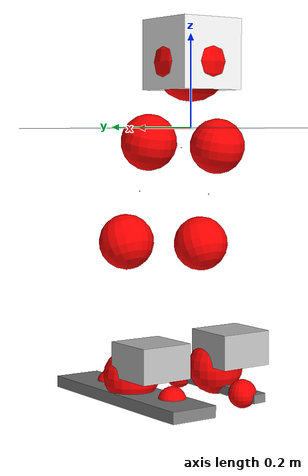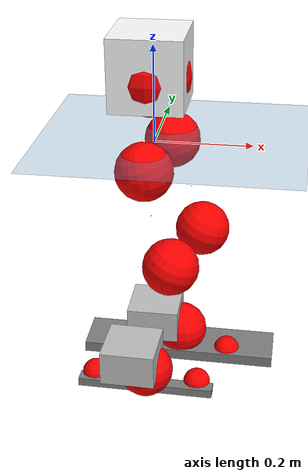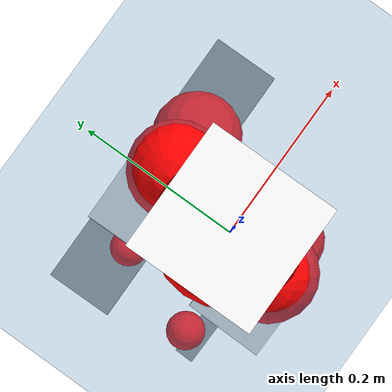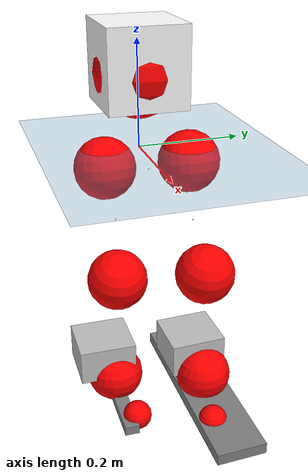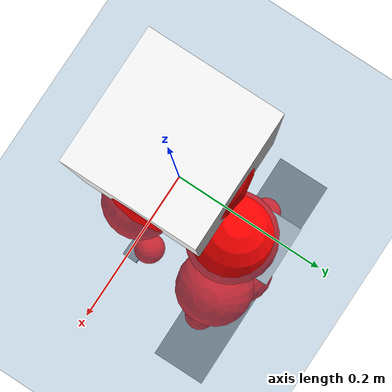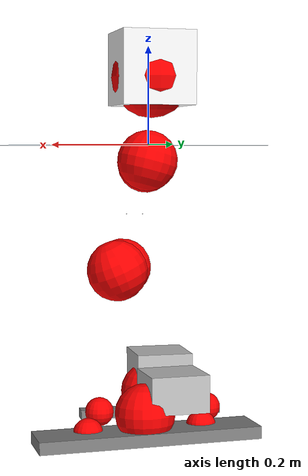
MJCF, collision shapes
<mujoco model="pi_12dof_release_v1">
  <compiler angle="radian" assetdir="assets" balanceinertia="true" inertiafromgeom="false"/>

  <option timestep="0.005" density="1.2" viscosity="2e-05"/>

  <size nkey="1"/>

  <visual>
    <quality shadowsize="8192"/>
    <map shadowclip="0.5"/>
  </visual>

  <default>
    <default class="/">
      <joint armature="0.01" damping="0.01" frictionloss="0.01"/>
      <geom contype="0" conaffinity="0" group="1" solref="-1000 -80"/>
      <site size="0.01 0.005 0.005" group="5"/>
      <general forcelimited="true" biastype="affine" gainprm="20" biasprm="0 -20 -0.5"/>
      <default class="foot">
        <geom size="0.0845 0.036 0.005" type="box" condim="6" group="4" priority="1" friction="0.9 0.2 0.2" solimp="0.015 1 0.005"/>
      </default>
      <default class="reward_collision_sphere">
        <geom group="5" rgba="1 0 0 1"/>
      </default>
    </default>
  </default>

  <asset>
    <texture type="skybox" colorspace="auto" name="//unnamed_texture_0" builtin="gradient" rgb1="0.95 0.95 0.95" rgb2="0.95 0.95 0.95" width="100" height="600"/>
    <texture type="2d" colorspace="auto" name="texplane" builtin="checker" rgb1="0.345 0.575 0.748" rgb2="0.345 0.575 0.748" markrgb="1 1 1" width="512" height="512"/>
    <material name="MatPlane" class="/" texture="texplane" texuniform="true" texrepeat="2 2" specular="0.9"/>
    <mesh name="baselink_1" class="/" file="baselink_1.STL"/>
    <mesh name="r_hip_pitch_link" class="/" file="r_hip_pitch_link.STL"/>
    <mesh name="r_hip_roll_link" class="/" file="r_hip_roll_link.STL"/>
    <mesh name="r_thigh_link" class="/" file="r_thigh_link.STL"/>
    <mesh name="r_calf_link" class="/" file="r_calf_link.STL"/>
    <mesh name="r_ankle_pitch_link" class="/" file="r_ankle_pitch_link.STL"/>
    <mesh name="r_ankle_roll_link" class="/" file="r_ankle_roll_link.STL"/>
    <mesh name="l_hip_pitch_link" class="/" file="l_hip_pitch_link.STL"/>
    <mesh name="l_hip_roll_link" class="/" file="l_hip_roll_link.STL"/>
    <mesh name="l_thigh_link" class="/" file="l_thigh_link.STL"/>
    <mesh name="l_calf_link" class="/" file="l_calf_link.STL"/>
    <mesh name="l_ankle_pitch_link" class="/" file="l_ankle_pitch_link.STL"/>
    <mesh name="l_ankle_roll_link" class="/" file="l_ankle_roll_link.STL"/>
  </asset>

  <worldbody>
    <geom name="floor" class="/" size="100 100 0.125" type="plane" group="0" material="MatPlane"/>
    <light name="toplight_shadow" class="/" pos="0 0 5" dir="0.0990148 0.0990148 -0.990148" type="directional" ambient="0.04 0.04 0.04" diffuse="0.55 0.55 0.55" specular="0.12 0.12 0.12"/>
    <light name="toplight_fill" class="/" pos="0 0 5" dir="0.0990148 0.0990148 -0.990148" type="directional" castshadow="false" ambient="0.04 0.04 0.04" diffuse="0.3 0.3 0.3" specular="0.08 0.08 0.08"/>
    <body name="trunk" pos="-0.00544886 0.00202238 0.0139418" quat="0.999996 -0.001231 -0.0016105 0.00212797">
      <inertial pos="0.0191984 0.0166477 0.0603487" quat="0.703089 -0.0272239 0.0375271 0.709589" mass="7.0641" diaginertia="0.0971239 0.00787898 0.0598131"/>
      <joint name="//unnamed_joint_0" type="free"/>
      <geom name="//unnamed_geom_1" class="/" type="mesh" density="0" rgba="1 1 1 1" mesh="baselink_1"/>
      <geom name="//unnamed_geom_2" class="/" size="0.0748167 0.0748167 0.0748167" pos="0 0 0.140959" type="box" rgba="1 1 1 1"/>
      <geom name="//unnamed_geom_3" class="reward_collision_sphere" size="0.0822984" pos="0 0 0.123339"/>
      <site name="imu" class="/" pos="0.0940142 0.0319413 -0.0830735" size="0.0149633"/>
      <camera name="track" class="/" pos="0 -2.03625 0" quat="0.707107 0.707107 0 0" mode="trackcom"/>
      <camera name="ego_camera" class="/" pos="0.128167 0 0.317158" quat="-0.5 -0.5 0.5 0.5"/>
      <body name="r_hip_pitch_link" pos="-0.00643257 -0.0137993 -0.0543446" quat="0.992463 -0.00410749 -0.122431 -0.00321711">
        <inertial pos="-0.015323 -0.0447702 0.00439052" quat="0.00239342 0.663157 -0.0203306 0.7482" mass="1.58634" diaginertia="0.00203281 0.000117663 0.00131391"/>
        <joint name="r_hip_pitch_joint" class="/" pos="0 0 0" axis="-0.0390023 -0.995388 -0.0876498" range="-1.72591 1.60233" armature="0.0235121" damping="0.112321" frictionloss="0.0221399"/>
        <geom name="//unnamed_geom_4" class="/" type="mesh" density="0" rgba="0.75294 0.75294 0.75294 1" mesh="r_hip_pitch_link"/>
        <geom name="//unnamed_geom_5" class="/" size="0.000748167 0.000748167 0.000748167" type="box" rgba="0.75294 0.75294 0.75294 1"/>
        <body name="r_hip_roll_link" pos="0.0014405 -0.0526378 -0.000605801" quat="0.999997 0.000182803 -0.00217016 0.00135753">
          <inertial pos="-0.0135784 0.000499992 -0.124306" quat="0.732667 -0.0821298 -0.0615161 0.672807" mass="1.02446" diaginertia="0.00555188 0.000284303 0.00222651"/>
          <joint name="r_hip_roll_joint" class="/" pos="0 0 0" axis="-0.995676 -0.0709604 -0.0599493" stiffness="0.0384256" range="0.219645 0.300488" armature="0.0232864" damping="0" frictionloss="0.0041238"/>
          <geom name="//unnamed_geom_6" class="/" type="mesh" density="0" rgba="0.75294 0.75294 0.75294 1" mesh="r_hip_roll_link"/>
          <geom name="//unnamed_geom_7" class="/" size="0.000748167 0.000748167 0.000748167" type="box" rgba="0.75294 0.75294 0.75294 1"/>
          <geom name="//unnamed_geom_8" class="reward_collision_sphere" size="0.0598534"/>
          <body name="r_thigh_link" pos="-0.0159083 0.0158762 -0.103228" quat="0.99997 -0.000156139 0.00499676 -0.00589847">
            <inertial pos="0.00800349 0.00225874 -0.0756126" quat="0.735277 0.676492 0.0249566 0.033221" mass="0.458266" diaginertia="0.00207092 0.000102319 0.00124116"/>
            <joint name="r_thigh_joint" class="/" pos="0 0 0" axis="0.0267862 -0.0606209 -0.997801" range="-0.495206 0.402136" armature="0.0192344" damping="0" frictionloss="0.00986958"/>
            <geom name="//unnamed_geom_9" class="/" type="mesh" density="0" rgba="0.75294 0.75294 0.75294 1" mesh="r_thigh_link"/>
            <geom name="//unnamed_geom_10" class="/" size="0.000748167 0.000748167 0.000748167" type="box" rgba="0.75294 0.75294 0.75294 1"/>
            <body name="r_calf_link" pos="0.0133265 -0.00859726 -0.118423" quat="0.947298 0.00100925 0.320351 -0.000797303">
              <inertial pos="-0.0169283 0.00460611 -0.128019" quat="0.999806 0.00298885 -0.0105904 0.0163332" mass="2.51644" diaginertia="0.0487802 0.00270983 0.00243226"/>
              <joint name="r_calf_joint" class="/" pos="0 0 0" axis="0.0653566 -0.997695 -0.0182335" stiffness="0.00173071" range="-1.5496 0.405563" armature="0.0252406" damping="0" frictionloss="0.0235358"/>
              <geom name="//unnamed_geom_11" class="/" type="mesh" density="0" rgba="0.75294 0.75294 0.75294 1" mesh="r_calf_link"/>
              <geom name="//unnamed_geom_12" class="/" size="0.000748167 0.000748167 0.000748167" type="box" rgba="0.75294 0.75294 0.75294 1"/>
              <geom name="//unnamed_geom_13" class="reward_collision_sphere" size="0.0598534"/>
              <body name="r_ankle_pitch_link" pos="0.0108305 -0.0175101 -0.235101" quat="0.979506 0.00137217 -0.201402 -0.00181447">
                <inertial pos="0.00796878 -0.00304069 0.00536346" quat="0.0674603 0.672376 0.0142185 0.736992" mass="0.853665" diaginertia="0.00494955 0.000240352 0.0020766"/>
                <joint name="r_ankle_pitch_joint" class="/" pos="0 0 0" axis="0.0201638 -0.999186 0.0349286" stiffness="0.0706746" range="-1.13579 0.355788" armature="0.0207537" damping="0.09949" frictionloss="0.0149927"/>
                <geom name="//unnamed_geom_14" class="/" type="mesh" density="0" rgba="0.75294 0.75294 0.75294 1" mesh="r_ankle_pitch_link"/>
                <geom name="//unnamed_geom_15" class="/" size="0.058357 0.0598534 0.0374084" type="box" rgba="0.75294 0.75294 0.75294 1"/>
                <body name="r_ankle_roll_link" pos="0.11199 0.0203419 -0.0103415" quat="0.999997 -0.00255445 -0.000287386 -0.000231019">
                  <inertial pos="-0.038004 0.00488064 -0.0429518" quat="0.515789 0.415455 0.462586 0.589384" mass="1.92304" diaginertia="0.0207531 0.00137454 0.00462719"/>
                  <joint name="r_ankle_roll_joint" class="/" pos="0 0 0" axis="-0.999772 -0.0212131 0.00239766" range="0.120257 -0.0529524" armature="0.00836808" damping="0.10149" frictionloss="0.0028127"/>
                  <geom name="//unnamed_geom_16" class="/" type="mesh" density="0" rgba="0.75294 0.75294 0.75294 1" mesh="r_ankle_roll_link"/>
                  <geom name="//unnamed_geom_17" class="/" type="mesh" rgba="0.75294 0.75294 0.75294 1" mesh="r_ankle_roll_link"/>
                  <geom name="right_foot" class="foot" size="0.15026 0.0150687 0.00947555" pos="-0.0871534 0 -0.0775276"/>
                  <geom name="//unnamed_geom_19" class="reward_collision_sphere" size="0.0598534" pos="-0.0854445 0 -0.0352398"/>
                  <geom name="//unnamed_geom_20" class="reward_collision_sphere" size="0.0299267" pos="0.0256333 0.0203625 -0.0704796"/>
                  <geom name="//unnamed_geom_21" class="reward_collision_sphere" size="0.0299267" pos="-0.205067 0.0203625 -0.0704796"/>
                  <site name="right_foot" class="foot" pos="-0.0871534 0 -0.0775276" size="0.0149633"/>
                </body>
              </body>
            </body>
          </body>
        </body>
      </body>
      <body name="l_hip_pitch_link" pos="0.0184369 0.0130053 -0.0567303" quat="0.992254 0.00277853 -0.124153 -0.00332564">
        <inertial pos="-0.00952011 0.0382816 -0.00512372" quat="-0.101014 0.705867 0.0152677 0.700939" mass="1.28069" diaginertia="0.00251561 0.000106479 0.00248089"/>
        <joint name="l_hip_pitch_joint" class="/" pos="0 0 0" axis="0.0277562 0.997301 0.0679718" stiffness="0.0439569" range="-0.908798 1.61512" armature="0.00142262" damping="0.0912696" frictionloss="0.0202932"/>
        <geom name="//unnamed_geom_22" class="/" type="mesh" density="0" rgba="0.75294 0.75294 0.75294 1" mesh="l_hip_pitch_link"/>
        <geom name="//unnamed_geom_23" class="/" size="0.000748167 0.000748167 0.000748167" type="box" rgba="0.75294 0.75294 0.75294 1"/>
        <body name="l_hip_roll_link" pos="0.0132589 0.0773311 0.00822788" quat="1 0.000195132 -0.000362119 7.74359e-05">
          <inertial pos="-0.00430914 -0.0152355 -0.10046" quat="0.688503 -0.0762081 -0.0575012 0.718922" mass="1.28541" diaginertia="0.00488987 0.00034828 0.00191581"/>
          <joint name="l_hip_roll_joint" class="/" pos="0 0 0" axis="-0.995724 -0.0853494 0.0353532" range="-0.872127 -0.150523" armature="0.0101533" damping="0.0496708" frictionloss="0.0273859"/>
          <geom name="//unnamed_geom_24" class="/" type="mesh" density="0" rgba="0.75294 0.75294 0.75294 1" mesh="l_hip_roll_link"/>
          <geom name="//unnamed_geom_25" class="/" size="0.000748167 0.000748167 0.000748167" type="box" rgba="0.75294 0.75294 0.75294 1"/>
          <geom name="//unnamed_geom_26" class="reward_collision_sphere" size="0.0598534"/>
          <body name="l_thigh_link" pos="0.013389 -0.00432855 -0.111989" quat="0.999987 0.00477259 0.00163831 0.00101988">
            <inertial pos="-0.00050573 -0.00116602 -0.0798998" quat="0.605451 0.79496 0.038064 -0.00445714" mass="0.363326" diaginertia="0.0016491 9.23641e-05 0.00117371"/>
            <joint name="l_thigh_joint" class="/" pos="0 0 0" axis="-0.0503674 0.00224365 -0.998728" stiffness="0.0193755" range="-0.347077 0.0362328" armature="0.0067509" damping="0.0835628" frictionloss="0.00513071"/>
            <geom name="//unnamed_geom_27" class="/" type="mesh" density="0" rgba="0.75294 0.75294 0.75294 1" mesh="l_thigh_link"/>
            <geom name="//unnamed_geom_28" class="/" size="0.000748167 0.000748167 0.000748167" type="box" rgba="0.75294 0.75294 0.75294 1"/>
            <body name="l_calf_link" pos="-0.00461421 0.0171939 -0.11284" quat="0.945775 -0.00287239 0.324787 0.00378674">
              <inertial pos="0.0178502 0.00749002 -0.139093" quat="0.998852 0.00870404 -0.00322401 0.0469981" mass="3.12053" diaginertia="0.0566599 0.00438086 0.0041662"/>
              <joint name="l_calf_joint" class="/" pos="0 0 0" axis="0.0208669 0.998789 -0.0445575" stiffness="0.0464495" range="-0.84939 2.0463" armature="0.026571" damping="0.0233726" frictionloss="0.027485"/>
              <geom name="//unnamed_geom_29" class="/" type="mesh" density="0" rgba="0.75294 0.75294 0.75294 1" mesh="l_calf_link"/>
              <geom name="//unnamed_geom_30" class="/" size="0.000748167 0.000748167 0.000748167" type="box" rgba="0.75294 0.75294 0.75294 1"/>
              <geom name="//unnamed_geom_31" class="reward_collision_sphere" size="0.0598534"/>
              <body name="l_ankle_pitch_link" pos="-0.0048237 0.0113688 -0.264018" quat="0.979937 0.000721284 -0.199288 0.00247558">
                <inertial pos="-0.00614479 0.00696465 -0.00709531" quat="-0.00242153 0.706893 0.00223186 0.707313" mass="0.899942" diaginertia="0.00669189 0.000285551 0.0022838"/>
                <joint name="l_ankle_pitch_joint" class="/" pos="0 0 0" axis="-0.0271383 0.997166 -0.0701622" stiffness="0.00805115" range="-0.566444 1.4142" armature="0.015099" damping="0.0908469" frictionloss="0.000139313"/>
                <geom name="//unnamed_geom_32" class="/" type="mesh" density="0" rgba="0.75294 0.75294 0.75294 1" mesh="l_ankle_pitch_link"/>
                <geom name="//unnamed_geom_33" class="/" size="0.058357 0.0598534 0.0374084" type="box" rgba="0.75294 0.75294 0.75294 1"/>
                <body name="l_ankle_roll_link" pos="0.145597 0.00772504 -0.00691203" quat="0.999984 0.00345197 0.00301424 -0.00341468">
                  <inertial pos="-0.030523 0.000621602 -0.0302995" quat="0.577303 0.474625 0.370466 0.55155" mass="1.50267" diaginertia="0.0177858 0.00084774 0.00425505"/>
                  <joint name="l_ankle_roll_joint" class="/" pos="0 0 0" axis="-0.9997 -0.0227445 0.00913782" range="-0.114194 0.124952" armature="0.0217998" damping="0" frictionloss="0.0285547"/>
                  <geom name="//unnamed_geom_34" class="/" type="mesh" density="0" rgba="0.75294 0.75294 0.75294 1" mesh="l_ankle_roll_link"/>
                  <geom name="//unnamed_geom_35" class="/" type="mesh" rgba="0.75294 0.75294 0.75294 1" mesh="l_ankle_roll_link"/>
                  <geom name="left_foot" class="foot" size="0.220969 0.0529462 0.0123412" pos="-0.0871534 0 -0.0775276"/>
                  <geom name="//unnamed_geom_37" class="reward_collision_sphere" size="0.0598534" pos="-0.0854445 0 -0.0352398"/>
                  <geom name="//unnamed_geom_38" class="reward_collision_sphere" size="0.0299267" pos="0.0256333 -0.0203625 -0.0704796"/>
                  <geom name="//unnamed_geom_39" class="reward_collision_sphere" size="0.0299267" pos="-0.205067 -0.0203625 -0.0704796"/>
                  <site name="left_foot" class="foot" pos="-0.0871534 0 -0.0775276" size="0.0149633"/>
                </body>
              </body>
            </body>
          </body>
        </body>
      </body>
    </body>
  </worldbody>

  <contact>
    <pair class="/" geom1="floor" geom2="right_foot" name="//unnamed_contact_1"/>
    <pair class="/" geom1="floor" geom2="left_foot" name="//unnamed_contact_0"/>
  </contact>

  <actuator>
    <general name="r_hip_pitch_joint" class="/" joint="r_hip_pitch_joint" forcerange="-19.9959 19.9959" gainprm="34.9141" biasprm="0 -34.9141 -0.440214"/>
    <general name="r_hip_roll_joint" class="/" joint="r_hip_roll_joint" forcerange="-50.1213 50.1213" gainprm="34.9141" biasprm="0 -34.9141 -0.440214"/>
    <general name="r_thigh_joint" class="/" joint="r_thigh_joint" forcerange="-14.1806 14.1806" gainprm="34.9141" biasprm="0 -34.9141 -0.440214"/>
    <general name="r_calf_joint" class="/" joint="r_calf_joint" forcerange="-35.5576 35.5576" gainprm="34.9141" biasprm="0 -34.9141 -0.440214"/>
    <general name="r_ankle_pitch_joint" class="/" joint="r_ankle_pitch_joint" forcerange="-49.7956 49.7956" gainprm="34.9141" biasprm="0 -34.9141 -0.440214"/>
    <general name="r_ankle_roll_joint" class="/" joint="r_ankle_roll_joint" forcerange="-33.2337 33.2337" gainprm="34.9141" biasprm="0 -34.9141 -0.440214"/>
    <general name="l_hip_pitch_joint" class="/" joint="l_hip_pitch_joint" forcerange="-39.4764 39.4764" gainprm="34.9141" biasprm="0 -34.9141 -0.440214"/>
    <general name="l_hip_roll_joint" class="/" joint="l_hip_roll_joint" forcerange="-46.0525 46.0525" gainprm="34.9141" biasprm="0 -34.9141 -0.440214"/>
    <general name="l_thigh_joint" class="/" joint="l_thigh_joint" forcerange="-41.1779 41.1779" gainprm="34.9141" biasprm="0 -34.9141 -0.440214"/>
    <general name="l_calf_joint" class="/" joint="l_calf_joint" forcerange="-46.7375 46.7375" gainprm="34.9141" biasprm="0 -34.9141 -0.440214"/>
    <general name="l_ankle_pitch_joint" class="/" joint="l_ankle_pitch_joint" forcerange="-18.4067 18.4067" gainprm="34.9141" biasprm="0 -34.9141 -0.440214"/>
    <general name="l_ankle_roll_joint" class="/" joint="l_ankle_roll_joint" forcerange="-50.7591 50.7591" gainprm="34.9141" biasprm="0 -34.9141 -0.440214"/>
  </actuator>

  <sensor>
    <gyro site="imu" name="imu_angular_velocity"/>
    <velocimeter site="imu" name="imu_linear_velocity"/>
    <framelinvel objtype="site" objname="left_foot" name="left_foot_global_linear_velocity"/>
    <framelinvel objtype="site" objname="right_foot" name="right_foot_global_linear_velocity"/>
  </sensor>

  <keyframe>
    <key name="home" qpos="0 0 0.291 1 0 0 0 0.4 0 0 -0.8 0.4 0 -0.4 0 0 0.8 -0.4 0"/>
  </keyframe>
</mujoco>
